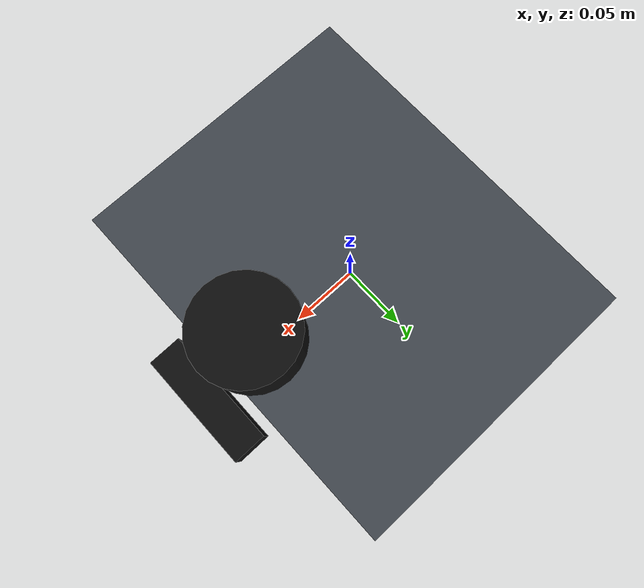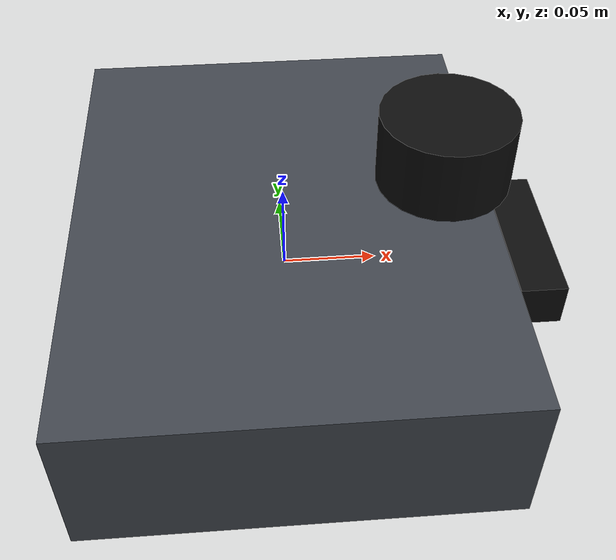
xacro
<?xml version="1.0"?>
<robot xmlns:xacro="http://ros.org/wiki/xacro" name="felix">

  <!-- ===================== Tunable geometry ===================== -->
  <!-- Chassis box (visual only; from config.yml geometry, approx). -->
  <xacro:property name="base_len"   value="0.22"/>   <!-- x, front<->rear -->
  <xacro:property name="base_width" value="0.28"/>   <!-- y, left<->right -->
  <xacro:property name="base_height" value="0.08"/>  <!-- z, chassis thickness -->
  <xacro:property name="wheel_radius" value="0.0485"/> <!-- base_link height above ground -->

  <!-- LASER (RPLIDAR) mount, base_link -> laser.  TODO: MEASURE THESE. -->
  <xacro:property name="laser_x"   value="0.083"/>
  <xacro:property name="laser_y"   value="0.0"/>
  <xacro:property name="laser_z"   value="0.075"/>
  <xacro:property name="laser_yaw" value="${pi}"/>

  <xacro:property name="imu_x"     value="0.0"/>
  <xacro:property name="imu_y"     value="0.0"/>
  <xacro:property name="imu_z"     value="0.0"/>
  <xacro:property name="imu_roll"  value="0.0"/>
  <xacro:property name="imu_pitch" value="0.0"/>
  <xacro:property name="imu_yaw"   value="0.0"/>

  <xacro:property name="camera_x"     value="0.1335"/>
  <xacro:property name="camera_y"     value="0.0"/>
  <xacro:property name="camera_z"     value="0.0"/>
  <xacro:property name="camera_roll"  value="0.0"/>
  <xacro:property name="camera_pitch" value="0.0"/>
  <xacro:property name="camera_yaw"   value="0.0"/>

  <!-- ===================== Materials ===================== -->
  <material name="felix_grey"><color rgba="0.25 0.27 0.30 1.0"/></material>
  <material name="felix_black"><color rgba="0.05 0.05 0.05 1.0"/></material>

  <!-- ===================== Links & joints ===================== -->
  <!-- Ground-projection frame. Nav2 and SLAM commonly reference this. -->
  <link name="base_footprint"/>

  <link name="base_link">
    <visual>
      <origin xyz="0 0 0" rpy="0 0 0"/>
      <geometry><box size="${base_len} ${base_width} ${base_height}"/></geometry>
      <material name="felix_grey"/>
    </visual>
  </link>

  <joint name="base_link_to_base_footprint" type="fixed">
    <parent link="base_link"/>
    <child link="base_footprint"/>
    <origin xyz="0 0 ${-wheel_radius}" rpy="0 0 0"/>
  </joint>

  <link name="imu_link"/>
  <joint name="base_link_to_imu" type="fixed">
    <parent link="base_link"/>
    <child link="imu_link"/>
    <origin xyz="${imu_x} ${imu_y} ${imu_z}" rpy="${imu_roll} ${imu_pitch} ${imu_yaw}"/>
  </joint>

  <link name="laser">
    <visual>
      <origin xyz="0 0 0" rpy="0 0 0"/>
      <geometry><cylinder radius="0.035" length="0.04"/></geometry>
      <material name="felix_black"/>
    </visual>
  </link>
  <joint name="base_link_to_laser" type="fixed">
    <parent link="base_link"/>
    <child link="laser"/>
    <origin xyz="${laser_x} ${laser_y} ${laser_z}" rpy="0 0 ${laser_yaw}"/>
  </joint>

  <link name="camera_link">
    <visual>
      <origin xyz="0 0 0" rpy="0 0 0"/>
      <geometry><box size="0.025 0.09 0.025"/></geometry>
      <material name="felix_black"/>
    </visual>
  </link>
  <joint name="base_link_to_camera" type="fixed">
    <parent link="base_link"/>
    <child link="camera_link"/>
    <origin xyz="${camera_x} ${camera_y} ${camera_z}"
            rpy="${camera_roll} ${camera_pitch} ${camera_yaw}"/>
  </joint>

  <link name="camera_optical_link"/>
  <joint name="camera_to_camera_optical" type="fixed">
    <parent link="camera_link"/>
    <child link="camera_optical_link"/>
    <origin xyz="0 0 0" rpy="${-pi/2} 0 ${-pi/2}"/>
  </joint>

</robot>
